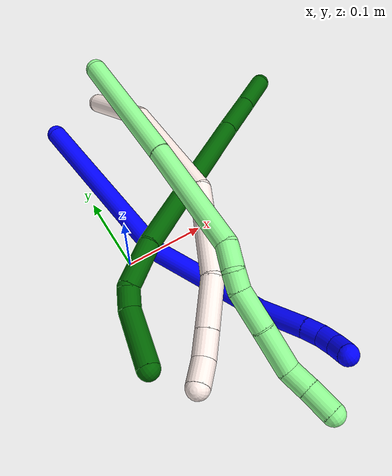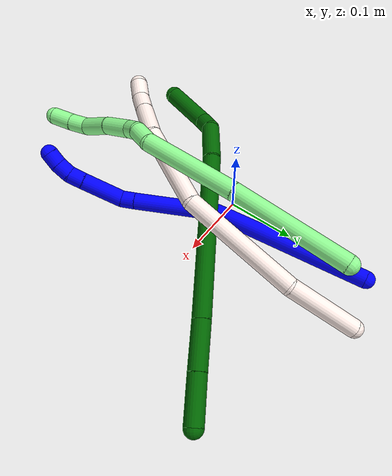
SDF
<sdf version="1.7">
 <world name="default">
  <model name="1">
   <static>0</static>
   <link name="1">
    <collision name="collision-cylinder-e_1_1_4">
     <pose>0.021706 -0.098961 -0.053769 2.06851 0.190398 0.318391</pose>
     <geometry><cylinder><radius>0.0125</radius><length>0.229395</length></cylinder></geometry>
     <surface>
      <friction><ode><mu>1.16</mu><mu2>1.16</mu2><slip1>0</slip1><slip2>0</slip2></ode></friction>
      <contact><ode><kp>1e+06</kp><kd>1</kd><max_vel>0</max_vel><min_depth>0.001</min_depth></ode></contact>
     </surface>
    </collision>
    <visual name="visual-cylinder-e_1_1_4">
     <pose>0.021706 -0.098961 -0.053769 2.06851 0.190398 0.318391</pose>
     <geometry><cylinder><radius>0.0125</radius><length>0.229395</length></cylinder></geometry>
     <material><ambient>0 0 1 1</ambient></material>
    </visual>
    <collision name="collision-cylinder-e_2_4_5">
     <pose>0.073482 -0.240779 -0.140738 2.2299 0.506398 0.971214</pose>
     <geometry><cylinder><radius>0.0125</radius><length>0.123987</length></cylinder></geometry>
     <surface>
      <friction><ode><mu>1.16</mu><mu2>1.16</mu2><slip1>0</slip1><slip2>0</slip2></ode></friction>
      <contact><ode><kp>1e+06</kp><kd>1</kd><max_vel>0</max_vel><min_depth>0.001</min_depth></ode></contact>
     </surface>
    </collision>
    <visual name="visual-cylinder-e_2_4_5">
     <pose>0.073482 -0.240779 -0.140738 2.2299 0.506398 0.971214</pose>
     <geometry><cylinder><radius>0.0125</radius><length>0.123987</length></cylinder></geometry>
     <material><ambient>0 0 1 1</ambient></material>
    </visual>
    <collision name="collision-cylinder-e_3_5_6">
     <pose>0.108422 -0.291187 -0.179608 2.2148 0.476355 0.904568</pose>
     <geometry><cylinder><radius>0.0125</radius><length>0.02125</length></cylinder></geometry>
     <surface>
      <friction><ode><mu>1.16</mu><mu2>1.16</mu2><slip1>0</slip1><slip2>0</slip2></ode></friction>
      <contact><ode><kp>1e+06</kp><kd>1</kd><max_vel>0</max_vel><min_depth>0.001</min_depth></ode></contact>
     </surface>
    </collision>
    <visual name="visual-cylinder-e_3_5_6">
     <pose>0.108422 -0.291187 -0.179608 2.2148 0.476355 0.904568</pose>
     <geometry><cylinder><radius>0.0125</radius><length>0.02125</length></cylinder></geometry>
     <material><ambient>0 0 1 1</ambient></material>
    </visual>
    <collision name="collision-cylinder-e_4_6_7">
     <pose>0.131055 -0.324 -0.189454 1.73467 0.606442 0.706743</pose>
     <geometry><cylinder><radius>0.0125</radius><length>0.062323</length></cylinder></geometry>
     <surface>
      <friction><ode><mu>1.16</mu><mu2>1.16</mu2><slip1>0</slip1><slip2>0</slip2></ode></friction>
      <contact><ode><kp>1e+06</kp><kd>1</kd><max_vel>0</max_vel><min_depth>0.001</min_depth></ode></contact>
     </surface>
    </collision>
    <visual name="visual-cylinder-e_4_6_7">
     <pose>0.131055 -0.324 -0.189454 1.73467 0.606442 0.706743</pose>
     <geometry><cylinder><radius>0.0125</radius><length>0.062323</length></cylinder></geometry>
     <material><ambient>0 0 1 1</ambient></material>
    </visual>
    <collision name="collision-cylinder-e_5_7_8">
     <pose>0.154404 -0.358281 -0.195299 1.75358 0.547292 0.650682</pose>
     <geometry><cylinder><radius>0.0125</radius><length>0.02148</length></cylinder></geometry>
     <surface>
      <friction><ode><mu>1.16</mu><mu2>1.16</mu2><slip1>0</slip1><slip2>0</slip2></ode></friction>
      <contact><ode><kp>1e+06</kp><kd>1</kd><max_vel>0</max_vel><min_depth>0.001</min_depth></ode></contact>
     </surface>
    </collision>
    <visual name="visual-cylinder-e_5_7_8">
     <pose>0.154404 -0.358281 -0.195299 1.75358 0.547292 0.650682</pose>
     <geometry><cylinder><radius>0.0125</radius><length>0.02148</length></cylinder></geometry>
     <material><ambient>0 0 1 1</ambient></material>
    </visual>
    <collision name="collision-cylinder-e_6_8_9">
     <pose>0.163837 -0.377123 -0.196487 1.52211 0.372592 0.355258</pose>
     <geometry><cylinder><radius>0.0125</radius><length>0.02112</length></cylinder></geometry>
     <surface>
      <friction><ode><mu>1.16</mu><mu2>1.16</mu2><slip1>0</slip1><slip2>0</slip2></ode></friction>
      <contact><ode><kp>1e+06</kp><kd>1</kd><max_vel>0</max_vel><min_depth>0.001</min_depth></ode></contact>
     </surface>
    </collision>
    <visual name="visual-cylinder-e_6_8_9">
     <pose>0.163837 -0.377123 -0.196487 1.52211 0.372592 0.355258</pose>
     <geometry><cylinder><radius>0.0125</radius><length>0.02112</length></cylinder></geometry>
     <material><ambient>0 0 1 1</ambient></material>
    </visual>
    <collision name="collision-cylinder-e_7_9_2">
     <pose>0.170445 -0.396523 -0.193737 1.3379 0.273707 0.216884</pose>
     <geometry><cylinder><radius>0.0125</radius><length>0.020445</length></cylinder></geometry>
     <surface>
      <friction><ode><mu>1.16</mu><mu2>1.16</mu2><slip1>0</slip1><slip2>0</slip2></ode></friction>
      <contact><ode><kp>1e+06</kp><kd>1</kd><max_vel>0</max_vel><min_depth>0.001</min_depth></ode></contact>
     </surface>
    </collision>
    <visual name="visual-cylinder-e_7_9_2">
     <pose>0.170445 -0.396523 -0.193737 1.3379 0.273707 0.216884</pose>
     <geometry><cylinder><radius>0.0125</radius><length>0.020445</length></cylinder></geometry>
     <material><ambient>0 0 1 1</ambient></material>
    </visual>
    <collision name="collision-sphere-2">
     <pose>0.173208 -0.406099 -0.191466 0 -0 0</pose>
     <geometry><sphere><radius>0.0125</radius></sphere></geometry>
     <surface>
      <friction><ode><mu>1.16</mu><mu2>1.16</mu2><slip1>0</slip1><slip2>0</slip2></ode></friction>
      <contact><ode><kp>1e+06</kp><kd>1</kd><max_vel>0</max_vel><min_depth>0.001</min_depth></ode></contact>
     </surface>
    </collision>
    <visual name="visual-sphere-2">
     <pose>0.173208 -0.406099 -0.191466 0 -0 0</pose>
     <geometry><sphere><radius>0.0125</radius></sphere></geometry>
     <material><ambient>0 0 1 1</ambient></material>
    </visual>
    <collision name="collision-sphere-9">
     <pose>0.167682 -0.386947 -0.196009 0 -0 0</pose>
     <geometry><sphere><radius>0.0125</radius></sphere></geometry>
     <surface>
      <friction><ode><mu>1.16</mu><mu2>1.16</mu2><slip1>0</slip1><slip2>0</slip2></ode></friction>
      <contact><ode><kp>1e+06</kp><kd>1</kd><max_vel>0</max_vel><min_depth>0.001</min_depth></ode></contact>
     </surface>
    </collision>
    <visual name="visual-sphere-9">
     <pose>0.167682 -0.386947 -0.196009 0 -0 0</pose>
     <geometry><sphere><radius>0.0125</radius></sphere></geometry>
     <material><ambient>0 0 1 1</ambient></material>
    </visual>
    <collision name="collision-sphere-4">
     <pose>0.043413 -0.197921 -0.107538 0 -0 0</pose>
     <geometry><sphere><radius>0.0125</radius></sphere></geometry>
     <surface>
      <friction><ode><mu>1.16</mu><mu2>1.16</mu2><slip1>0</slip1><slip2>0</slip2></ode></friction>
      <contact><ode><kp>1e+06</kp><kd>1</kd><max_vel>0</max_vel><min_depth>0.001</min_depth></ode></contact>
     </surface>
    </collision>
    <visual name="visual-sphere-4">
     <pose>0.043413 -0.197921 -0.107538 0 -0 0</pose>
     <geometry><sphere><radius>0.0125</radius></sphere></geometry>
     <material><ambient>0 0 1 1</ambient></material>
    </visual>
    <collision name="collision-sphere-1">
     <geometry><sphere><radius>0.0125</radius></sphere></geometry>
     <surface>
      <friction><ode><mu>1.16</mu><mu2>1.16</mu2><slip1>0</slip1><slip2>0</slip2></ode></friction>
      <contact><ode><kp>1e+06</kp><kd>1</kd><max_vel>0</max_vel><min_depth>0.001</min_depth></ode></contact>
     </surface>
    </collision>
    <visual name="visual-sphere-1">
     <geometry><sphere><radius>0.0125</radius></sphere></geometry>
     <material><ambient>0 0 1 1</ambient></material>
    </visual>
    <collision name="collision-sphere-8">
     <pose>0.159993 -0.367299 -0.196966 0 -0 0</pose>
     <geometry><sphere><radius>0.0125</radius></sphere></geometry>
     <surface>
      <friction><ode><mu>1.16</mu><mu2>1.16</mu2><slip1>0</slip1><slip2>0</slip2></ode></friction>
      <contact><ode><kp>1e+06</kp><kd>1</kd><max_vel>0</max_vel><min_depth>0.001</min_depth></ode></contact>
     </surface>
    </collision>
    <visual name="visual-sphere-8">
     <pose>0.159993 -0.367299 -0.196966 0 -0 0</pose>
     <geometry><sphere><radius>0.0125</radius></sphere></geometry>
     <material><ambient>0 0 1 1</ambient></material>
    </visual>
    <collision name="collision-sphere-5">
     <pose>0.10355 -0.283636 -0.173939 0 -0 0</pose>
     <geometry><sphere><radius>0.0125</radius></sphere></geometry>
     <surface>
      <friction><ode><mu>1.16</mu><mu2>1.16</mu2><slip1>0</slip1><slip2>0</slip2></ode></friction>
      <contact><ode><kp>1e+06</kp><kd>1</kd><max_vel>0</max_vel><min_depth>0.001</min_depth></ode></contact>
     </surface>
    </collision>
    <visual name="visual-sphere-5">
     <pose>0.10355 -0.283636 -0.173939 0 -0 0</pose>
     <geometry><sphere><radius>0.0125</radius></sphere></geometry>
     <material><ambient>0 0 1 1</ambient></material>
    </visual>
    <collision name="collision-sphere-6">
     <pose>0.113294 -0.298738 -0.185277 0 -0 0</pose>
     <geometry><sphere><radius>0.0125</radius></sphere></geometry>
     <surface>
      <friction><ode><mu>1.16</mu><mu2>1.16</mu2><slip1>0</slip1><slip2>0</slip2></ode></friction>
      <contact><ode><kp>1e+06</kp><kd>1</kd><max_vel>0</max_vel><min_depth>0.001</min_depth></ode></contact>
     </surface>
    </collision>
    <visual name="visual-sphere-6">
     <pose>0.113294 -0.298738 -0.185277 0 -0 0</pose>
     <geometry><sphere><radius>0.0125</radius></sphere></geometry>
     <material><ambient>0 0 1 1</ambient></material>
    </visual>
    <collision name="collision-sphere-7">
     <pose>0.148815 -0.349262 -0.193632 0 -0 0</pose>
     <geometry><sphere><radius>0.0125</radius></sphere></geometry>
     <surface>
      <friction><ode><mu>1.16</mu><mu2>1.16</mu2><slip1>0</slip1><slip2>0</slip2></ode></friction>
      <contact><ode><kp>1e+06</kp><kd>1</kd><max_vel>0</max_vel><min_depth>0.001</min_depth></ode></contact>
     </surface>
    </collision>
    <visual name="visual-sphere-7">
     <pose>0.148815 -0.349262 -0.193632 0 -0 0</pose>
     <geometry><sphere><radius>0.0125</radius></sphere></geometry>
     <material><ambient>0 0 1 1</ambient></material>
    </visual>
    <inertial>
     <pose>0.069647 -0.205405 -0.115428 0 -0 0</pose>
     <mass>0.5</mass>
     <inertia><ixx>0.001505</ixx><ixy>0</ixy><ixz>0</ixz><iyy>7e-06</iyy><iyz>0</iyz><izz>0.000711</izz></inertia>
    </inertial>
   </link>
   <pose>0.006772 0.222565 0.010887 -0.415862 -0.412497 -0.088913</pose>
  </model>
  <model name="6">
   <static>0</static>
   <link name="6">
    <collision name="collision-cylinder-e_1_1_4">
     <pose>-0.023605 0.01923 -0.005114 -1.83071 -0.870386 1.08776</pose>
     <geometry><cylinder><radius>0.0125</radius><length>0.061746</length></cylinder></geometry>
     <surface>
      <friction><ode><mu>1.16</mu><mu2>1.16</mu2><slip1>0</slip1><slip2>0</slip2></ode></friction>
      <contact><ode><kp>1e+06</kp><kd>1</kd><max_vel>0</max_vel><min_depth>0.001</min_depth></ode></contact>
     </surface>
    </collision>
    <visual name="visual-cylinder-e_1_1_4">
     <pose>-0.023605 0.01923 -0.005114 -1.83071 -0.870386 1.08776</pose>
     <geometry><cylinder><radius>0.0125</radius><length>0.061746</length></cylinder></geometry>
     <material><ambient>0 0.392157 0.003922 1</ambient></material>
    </visual>
    <collision name="collision-cylinder-e_2_4_5">
     <pose>-0.070919 0.058342 -0.015295 -1.82035 -0.857471 1.0634</pose>
     <geometry><cylinder><radius>0.0125</radius><length>0.062707</length></cylinder></geometry>
     <surface>
      <friction><ode><mu>1.16</mu><mu2>1.16</mu2><slip1>0</slip1><slip2>0</slip2></ode></friction>
      <contact><ode><kp>1e+06</kp><kd>1</kd><max_vel>0</max_vel><min_depth>0.001</min_depth></ode></contact>
     </surface>
    </collision>
    <visual name="visual-cylinder-e_2_4_5">
     <pose>-0.070919 0.058342 -0.015295 -1.82035 -0.857471 1.0634</pose>
     <geometry><cylinder><radius>0.0125</radius><length>0.062707</length></cylinder></geometry>
     <material><ambient>0 0.392157 0.003922 1</ambient></material>
    </visual>
    <collision name="collision-cylinder-e_3_5_6">
     <pose>-0.18147 0.149282 -0.040008 -1.84053 -0.866905 1.09274</pose>
     <geometry><cylinder><radius>0.0125</radius><length>0.227832</length></cylinder></geometry>
     <surface>
      <friction><ode><mu>1.16</mu><mu2>1.16</mu2><slip1>0</slip1><slip2>0</slip2></ode></friction>
      <contact><ode><kp>1e+06</kp><kd>1</kd><max_vel>0</max_vel><min_depth>0.001</min_depth></ode></contact>
     </surface>
    </collision>
    <visual name="visual-cylinder-e_3_5_6">
     <pose>-0.18147 0.149282 -0.040008 -1.84053 -0.866905 1.09274</pose>
     <geometry><cylinder><radius>0.0125</radius><length>0.227832</length></cylinder></geometry>
     <material><ambient>0 0.392157 0.003922 1</ambient></material>
    </visual>
    <collision name="collision-cylinder-e_4_6_7">
     <pose>-0.287102 0.239252 -0.069015 -2.03047 -0.727544 1.10026</pose>
     <geometry><cylinder><radius>0.0125</radius><length>0.05651</length></cylinder></geometry>
     <surface>
      <friction><ode><mu>1.16</mu><mu2>1.16</mu2><slip1>0</slip1><slip2>0</slip2></ode></friction>
      <contact><ode><kp>1e+06</kp><kd>1</kd><max_vel>0</max_vel><min_depth>0.001</min_depth></ode></contact>
     </surface>
    </collision>
    <visual name="visual-cylinder-e_4_6_7">
     <pose>-0.287102 0.239252 -0.069015 -2.03047 -0.727544 1.10026</pose>
     <geometry><cylinder><radius>0.0125</radius><length>0.05651</length></cylinder></geometry>
     <material><ambient>0 0.392157 0.003922 1</ambient></material>
    </visual>
    <collision name="collision-cylinder-e_5_7_8">
     <pose>-0.311379 0.263756 -0.087445 -2.58887 -0.475485 1.4141</pose>
     <geometry><cylinder><radius>0.0125</radius><length>0.023967</length></cylinder></geometry>
     <surface>
      <friction><ode><mu>1.16</mu><mu2>1.16</mu2><slip1>0</slip1><slip2>0</slip2></ode></friction>
      <contact><ode><kp>1e+06</kp><kd>1</kd><max_vel>0</max_vel><min_depth>0.001</min_depth></ode></contact>
     </surface>
    </collision>
    <visual name="visual-cylinder-e_5_7_8">
     <pose>-0.311379 0.263756 -0.087445 -2.58887 -0.475485 1.4141</pose>
     <geometry><cylinder><radius>0.0125</radius><length>0.023967</length></cylinder></geometry>
     <material><ambient>0 0.392157 0.003922 1</ambient></material>
    </visual>
    <collision name="collision-cylinder-e_6_8_2">
     <pose>-0.338928 0.273933 -0.121461 -2.95991 -0.715892 2.66386</pose>
     <geometry><cylinder><radius>0.0125</radius><length>0.067237</length></cylinder></geometry>
     <surface>
      <friction><ode><mu>1.16</mu><mu2>1.16</mu2><slip1>0</slip1><slip2>0</slip2></ode></friction>
      <contact><ode><kp>1e+06</kp><kd>1</kd><max_vel>0</max_vel><min_depth>0.001</min_depth></ode></contact>
     </surface>
    </collision>
    <visual name="visual-cylinder-e_6_8_2">
     <pose>-0.338928 0.273933 -0.121461 -2.95991 -0.715892 2.66386</pose>
     <geometry><cylinder><radius>0.0125</radius><length>0.067237</length></cylinder></geometry>
     <material><ambient>0 0.392157 0.003922 1</ambient></material>
    </visual>
    <collision name="collision-sphere-2">
     <pose>-0.360991 0.278516 -0.146408 0 -0 0</pose>
     <geometry><sphere><radius>0.0125</radius></sphere></geometry>
     <surface>
      <friction><ode><mu>1.16</mu><mu2>1.16</mu2><slip1>0</slip1><slip2>0</slip2></ode></friction>
      <contact><ode><kp>1e+06</kp><kd>1</kd><max_vel>0</max_vel><min_depth>0.001</min_depth></ode></contact>
     </surface>
    </collision>
    <visual name="visual-sphere-2">
     <pose>-0.360991 0.278516 -0.146408 0 -0 0</pose>
     <geometry><sphere><radius>0.0125</radius></sphere></geometry>
     <material><ambient>0 0.392157 0.003922 1</ambient></material>
    </visual>
    <collision name="collision-sphere-4">
     <pose>-0.04721 0.038461 -0.010228 0 -0 0</pose>
     <geometry><sphere><radius>0.0125</radius></sphere></geometry>
     <surface>
      <friction><ode><mu>1.16</mu><mu2>1.16</mu2><slip1>0</slip1><slip2>0</slip2></ode></friction>
      <contact><ode><kp>1e+06</kp><kd>1</kd><max_vel>0</max_vel><min_depth>0.001</min_depth></ode></contact>
     </surface>
    </collision>
    <visual name="visual-sphere-4">
     <pose>-0.04721 0.038461 -0.010228 0 -0 0</pose>
     <geometry><sphere><radius>0.0125</radius></sphere></geometry>
     <material><ambient>0 0.392157 0.003922 1</ambient></material>
    </visual>
    <collision name="collision-sphere-1">
     <geometry><sphere><radius>0.0125</radius></sphere></geometry>
     <surface>
      <friction><ode><mu>1.16</mu><mu2>1.16</mu2><slip1>0</slip1><slip2>0</slip2></ode></friction>
      <contact><ode><kp>1e+06</kp><kd>1</kd><max_vel>0</max_vel><min_depth>0.001</min_depth></ode></contact>
     </surface>
    </collision>
    <visual name="visual-sphere-1">
     <geometry><sphere><radius>0.0125</radius></sphere></geometry>
     <material><ambient>0 0.392157 0.003922 1</ambient></material>
    </visual>
    <collision name="collision-sphere-8">
     <pose>-0.316865 0.26935 -0.096513 0 -0 0</pose>
     <geometry><sphere><radius>0.0125</radius></sphere></geometry>
     <surface>
      <friction><ode><mu>1.16</mu><mu2>1.16</mu2><slip1>0</slip1><slip2>0</slip2></ode></friction>
      <contact><ode><kp>1e+06</kp><kd>1</kd><max_vel>0</max_vel><min_depth>0.001</min_depth></ode></contact>
     </surface>
    </collision>
    <visual name="visual-sphere-8">
     <pose>-0.316865 0.26935 -0.096513 0 -0 0</pose>
     <geometry><sphere><radius>0.0125</radius></sphere></geometry>
     <material><ambient>0 0.392157 0.003922 1</ambient></material>
    </visual>
    <collision name="collision-sphere-5">
     <pose>-0.094629 0.078222 -0.020362 0 -0 0</pose>
     <geometry><sphere><radius>0.0125</radius></sphere></geometry>
     <surface>
      <friction><ode><mu>1.16</mu><mu2>1.16</mu2><slip1>0</slip1><slip2>0</slip2></ode></friction>
      <contact><ode><kp>1e+06</kp><kd>1</kd><max_vel>0</max_vel><min_depth>0.001</min_depth></ode></contact>
     </surface>
    </collision>
    <visual name="visual-sphere-5">
     <pose>-0.094629 0.078222 -0.020362 0 -0 0</pose>
     <geometry><sphere><radius>0.0125</radius></sphere></geometry>
     <material><ambient>0 0.392157 0.003922 1</ambient></material>
    </visual>
    <collision name="collision-sphere-6">
     <pose>-0.268312 0.220341 -0.059654 0 -0 0</pose>
     <geometry><sphere><radius>0.0125</radius></sphere></geometry>
     <surface>
      <friction><ode><mu>1.16</mu><mu2>1.16</mu2><slip1>0</slip1><slip2>0</slip2></ode></friction>
      <contact><ode><kp>1e+06</kp><kd>1</kd><max_vel>0</max_vel><min_depth>0.001</min_depth></ode></contact>
     </surface>
    </collision>
    <visual name="visual-sphere-6">
     <pose>-0.268312 0.220341 -0.059654 0 -0 0</pose>
     <geometry><sphere><radius>0.0125</radius></sphere></geometry>
     <material><ambient>0 0.392157 0.003922 1</ambient></material>
    </visual>
    <collision name="collision-sphere-7">
     <pose>-0.305893 0.258163 -0.078377 0 -0 0</pose>
     <geometry><sphere><radius>0.0125</radius></sphere></geometry>
     <surface>
      <friction><ode><mu>1.16</mu><mu2>1.16</mu2><slip1>0</slip1><slip2>0</slip2></ode></friction>
      <contact><ode><kp>1e+06</kp><kd>1</kd><max_vel>0</max_vel><min_depth>0.001</min_depth></ode></contact>
     </surface>
    </collision>
    <visual name="visual-sphere-7">
     <pose>-0.305893 0.258163 -0.078377 0 -0 0</pose>
     <geometry><sphere><radius>0.0125</radius></sphere></geometry>
     <material><ambient>0 0.392157 0.003922 1</ambient></material>
    </visual>
    <inertial>
     <pose>-0.18745 0.154234 -0.049105 0 -0 0</pose>
     <mass>0.5</mass>
     <inertia>
      <ixx>0.000889</ixx>
      <ixy>0</ixy>
      <ixz>0</ixz>
      <iyy>0.001224</iyy>
      <iyz>0</iyz>
      <izz>0.000147</izz>
     </inertia>
    </inertial>
   </link>
   <pose>0.301144 0.154373 0.011959 -0.742351 0.86712 0.937445</pose>
  </model>
  <model name="11">
   <static>0</static>
   <link name="11">
    <collision name="collision-cylinder-e_1_1_4">
     <pose>0.028968 -0.03554 0.021991 1.01668 0.606097 0.344978</pose>
     <geometry><cylinder><radius>0.0125</radius><length>0.101703</length></cylinder></geometry>
     <surface>
      <friction><ode><mu>1.16</mu><mu2>1.16</mu2><slip1>0</slip1><slip2>0</slip2></ode></friction>
      <contact><ode><kp>1e+06</kp><kd>1</kd><max_vel>0</max_vel><min_depth>0.001</min_depth></ode></contact>
     </surface>
    </collision>
    <visual name="visual-cylinder-e_1_1_4">
     <pose>0.028968 -0.03554 0.021991 1.01668 0.606097 0.344978</pose>
     <geometry><cylinder><radius>0.0125</radius><length>0.101703</length></cylinder></geometry>
     <material><ambient>1 0.933333 0.909804 1</ambient></material>
    </visual>
    <collision name="collision-cylinder-e_2_4_5">
     <pose>0.078967 -0.142452 0.078924 1.11554 0.258717 0.161951</pose>
     <geometry><cylinder><radius>0.0125</radius><length>0.164404</length></cylinder></geometry>
     <surface>
      <friction><ode><mu>1.16</mu><mu2>1.16</mu2><slip1>0</slip1><slip2>0</slip2></ode></friction>
      <contact><ode><kp>1e+06</kp><kd>1</kd><max_vel>0</max_vel><min_depth>0.001</min_depth></ode></contact>
     </surface>
    </collision>
    <visual name="visual-cylinder-e_2_4_5">
     <pose>0.078967 -0.142452 0.078924 1.11554 0.258717 0.161951</pose>
     <geometry><cylinder><radius>0.0125</radius><length>0.164404</length></cylinder></geometry>
     <material><ambient>1 0.933333 0.909804 1</ambient></material>
    </visual>
    <collision name="collision-cylinder-e_3_5_6">
     <pose>0.090968 -0.26478 0.144545 1.02882 -0.150668 -0.085262</pose>
     <geometry><cylinder><radius>0.0125</radius><length>0.120321</length></cylinder></geometry>
     <surface>
      <friction><ode><mu>1.16</mu><mu2>1.16</mu2><slip1>0</slip1><slip2>0</slip2></ode></friction>
      <contact><ode><kp>1e+06</kp><kd>1</kd><max_vel>0</max_vel><min_depth>0.001</min_depth></ode></contact>
     </surface>
    </collision>
    <visual name="visual-cylinder-e_3_5_6">
     <pose>0.090968 -0.26478 0.144545 1.02882 -0.150668 -0.085262</pose>
     <geometry><cylinder><radius>0.0125</radius><length>0.120321</length></cylinder></geometry>
     <material><ambient>1 0.933333 0.909804 1</ambient></material>
    </visual>
    <collision name="collision-cylinder-e_4_6_7">
     <pose>0.070081 -0.338396 0.186354 1.11433 -0.43908 -0.276261</pose>
     <geometry><cylinder><radius>0.0125</radius><length>0.055784</length></cylinder></geometry>
     <surface>
      <friction><ode><mu>1.16</mu><mu2>1.16</mu2><slip1>0</slip1><slip2>0</slip2></ode></friction>
      <contact><ode><kp>1e+06</kp><kd>1</kd><max_vel>0</max_vel><min_depth>0.001</min_depth></ode></contact>
     </surface>
    </collision>
    <visual name="visual-cylinder-e_4_6_7">
     <pose>0.070081 -0.338396 0.186354 1.11433 -0.43908 -0.276261</pose>
     <geometry><cylinder><radius>0.0125</radius><length>0.055784</length></cylinder></geometry>
     <material><ambient>1 0.933333 0.909804 1</ambient></material>
    </visual>
    <collision name="collision-cylinder-e_5_7_8">
     <pose>0.051884 -0.372941 0.203513 1.10117 -0.443995 -0.275386</pose>
     <geometry><cylinder><radius>0.0125</radius><length>0.029515</length></cylinder></geometry>
     <surface>
      <friction><ode><mu>1.16</mu><mu2>1.16</mu2><slip1>0</slip1><slip2>0</slip2></ode></friction>
      <contact><ode><kp>1e+06</kp><kd>1</kd><max_vel>0</max_vel><min_depth>0.001</min_depth></ode></contact>
     </surface>
    </collision>
    <visual name="visual-cylinder-e_5_7_8">
     <pose>0.051884 -0.372941 0.203513 1.10117 -0.443995 -0.275386</pose>
     <geometry><cylinder><radius>0.0125</radius><length>0.029515</length></cylinder></geometry>
     <material><ambient>1 0.933333 0.909804 1</ambient></material>
    </visual>
    <collision name="collision-cylinder-e_6_8_2">
     <pose>0.040223 -0.394451 0.218425 0.825635 -0.386026 -0.170789</pose>
     <geometry><cylinder><radius>0.0125</radius><length>0.028273</length></cylinder></geometry>
     <surface>
      <friction><ode><mu>1.16</mu><mu2>1.16</mu2><slip1>0</slip1><slip2>0</slip2></ode></friction>
      <contact><ode><kp>1e+06</kp><kd>1</kd><max_vel>0</max_vel><min_depth>0.001</min_depth></ode></contact>
     </surface>
    </collision>
    <visual name="visual-cylinder-e_6_8_2">
     <pose>0.040223 -0.394451 0.218425 0.825635 -0.386026 -0.170789</pose>
     <geometry><cylinder><radius>0.0125</radius><length>0.028273</length></cylinder></geometry>
     <material><ambient>1 0.933333 0.909804 1</ambient></material>
    </visual>
    <collision name="collision-sphere-2">
     <pose>0.0349 -0.404076 0.227306 0 -0 0</pose>
     <geometry><sphere><radius>0.0125</radius></sphere></geometry>
     <surface>
      <friction><ode><mu>1.16</mu><mu2>1.16</mu2><slip1>0</slip1><slip2>0</slip2></ode></friction>
      <contact><ode><kp>1e+06</kp><kd>1</kd><max_vel>0</max_vel><min_depth>0.001</min_depth></ode></contact>
     </surface>
    </collision>
    <visual name="visual-sphere-2">
     <pose>0.0349 -0.404076 0.227306 0 -0 0</pose>
     <geometry><sphere><radius>0.0125</radius></sphere></geometry>
     <material><ambient>1 0.933333 0.909804 1</ambient></material>
    </visual>
    <collision name="collision-sphere-4">
     <pose>0.057936 -0.07108 0.043983 0 -0 0</pose>
     <geometry><sphere><radius>0.0125</radius></sphere></geometry>
     <surface>
      <friction><ode><mu>1.16</mu><mu2>1.16</mu2><slip1>0</slip1><slip2>0</slip2></ode></friction>
      <contact><ode><kp>1e+06</kp><kd>1</kd><max_vel>0</max_vel><min_depth>0.001</min_depth></ode></contact>
     </surface>
    </collision>
    <visual name="visual-sphere-4">
     <pose>0.057936 -0.07108 0.043983 0 -0 0</pose>
     <geometry><sphere><radius>0.0125</radius></sphere></geometry>
     <material><ambient>1 0.933333 0.909804 1</ambient></material>
    </visual>
    <collision name="collision-sphere-1">
     <geometry><sphere><radius>0.0125</radius></sphere></geometry>
     <surface>
      <friction><ode><mu>1.16</mu><mu2>1.16</mu2><slip1>0</slip1><slip2>0</slip2></ode></friction>
      <contact><ode><kp>1e+06</kp><kd>1</kd><max_vel>0</max_vel><min_depth>0.001</min_depth></ode></contact>
     </surface>
    </collision>
    <visual name="visual-sphere-1">
     <geometry><sphere><radius>0.0125</radius></sphere></geometry>
     <material><ambient>1 0.933333 0.909804 1</ambient></material>
    </visual>
    <collision name="collision-sphere-8">
     <pose>0.045545 -0.384825 0.209544 0 -0 0</pose>
     <geometry><sphere><radius>0.0125</radius></sphere></geometry>
     <surface>
      <friction><ode><mu>1.16</mu><mu2>1.16</mu2><slip1>0</slip1><slip2>0</slip2></ode></friction>
      <contact><ode><kp>1e+06</kp><kd>1</kd><max_vel>0</max_vel><min_depth>0.001</min_depth></ode></contact>
     </surface>
    </collision>
    <visual name="visual-sphere-8">
     <pose>0.045545 -0.384825 0.209544 0 -0 0</pose>
     <geometry><sphere><radius>0.0125</radius></sphere></geometry>
     <material><ambient>1 0.933333 0.909804 1</ambient></material>
    </visual>
    <collision name="collision-sphere-5">
     <pose>0.099998 -0.213825 0.113864 0 -0 0</pose>
     <geometry><sphere><radius>0.0125</radius></sphere></geometry>
     <surface>
      <friction><ode><mu>1.16</mu><mu2>1.16</mu2><slip1>0</slip1><slip2>0</slip2></ode></friction>
      <contact><ode><kp>1e+06</kp><kd>1</kd><max_vel>0</max_vel><min_depth>0.001</min_depth></ode></contact>
     </surface>
    </collision>
    <visual name="visual-sphere-5">
     <pose>0.099998 -0.213825 0.113864 0 -0 0</pose>
     <geometry><sphere><radius>0.0125</radius></sphere></geometry>
     <material><ambient>1 0.933333 0.909804 1</ambient></material>
    </visual>
    <collision name="collision-sphere-6">
     <pose>0.081938 -0.315735 0.175226 0 -0 0</pose>
     <geometry><sphere><radius>0.0125</radius></sphere></geometry>
     <surface>
      <friction><ode><mu>1.16</mu><mu2>1.16</mu2><slip1>0</slip1><slip2>0</slip2></ode></friction>
      <contact><ode><kp>1e+06</kp><kd>1</kd><max_vel>0</max_vel><min_depth>0.001</min_depth></ode></contact>
     </surface>
    </collision>
    <visual name="visual-sphere-6">
     <pose>0.081938 -0.315735 0.175226 0 -0 0</pose>
     <geometry><sphere><radius>0.0125</radius></sphere></geometry>
     <material><ambient>1 0.933333 0.909804 1</ambient></material>
    </visual>
    <collision name="collision-sphere-7">
     <pose>0.058224 -0.361057 0.197482 0 -0 0</pose>
     <geometry><sphere><radius>0.0125</radius></sphere></geometry>
     <surface>
      <friction><ode><mu>1.16</mu><mu2>1.16</mu2><slip1>0</slip1><slip2>0</slip2></ode></friction>
      <contact><ode><kp>1e+06</kp><kd>1</kd><max_vel>0</max_vel><min_depth>0.001</min_depth></ode></contact>
     </surface>
    </collision>
    <visual name="visual-sphere-7">
     <pose>0.058224 -0.361057 0.197482 0 -0 0</pose>
     <geometry><sphere><radius>0.0125</radius></sphere></geometry>
     <material><ambient>1 0.933333 0.909804 1</ambient></material>
    </visual>
    <inertial>
     <pose>0.066904 -0.199859 0.110363 0 -0 0</pose>
     <mass>0.5</mass>
     <inertia>
      <ixx>0.000667</ixx>
      <ixy>0</ixy>
      <ixz>0</ixz>
      <iyy>0.000364</iyy>
      <iyz>0</iyz>
      <izz>0.000438</izz>
     </inertia>
    </inertial>
   </link>
   <pose>0.081668 0.242839 0.012153 0.301983 -0.506521 -0.207236</pose>
  </model>
  <model name="13">
   <static>0</static>
   <link name="13">
    <collision name="collision-cylinder-e_1_1_4">
     <pose>0.003585 -0.079966 0.01201 1.42172 0.044308 0.038152</pose>
     <geometry><cylinder><radius>0.0125</radius><length>0.161885</length></cylinder></geometry>
     <surface>
      <friction><ode><mu>1.16</mu><mu2>1.16</mu2><slip1>0</slip1><slip2>0</slip2></ode></friction>
      <contact><ode><kp>1e+06</kp><kd>1</kd><max_vel>0</max_vel><min_depth>0.001</min_depth></ode></contact>
     </surface>
    </collision>
    <visual name="visual-cylinder-e_1_1_4">
     <pose>0.003585 -0.079966 0.01201 1.42172 0.044308 0.038152</pose>
     <geometry><cylinder><radius>0.0125</radius><length>0.161885</length></cylinder></geometry>
     <material><ambient>0.564706 0.984314 0.572549 1</ambient></material>
    </visual>
    <collision name="collision-cylinder-e_2_4_5">
     <pose>0.005794 -0.227666 0.034713 1.41422 -0.020064 -0.017145</pose>
     <geometry><cylinder><radius>0.0125</radius><length>0.137173</length></cylinder></geometry>
     <surface>
      <friction><ode><mu>1.16</mu><mu2>1.16</mu2><slip1>0</slip1><slip2>0</slip2></ode></friction>
      <contact><ode><kp>1e+06</kp><kd>1</kd><max_vel>0</max_vel><min_depth>0.001</min_depth></ode></contact>
     </surface>
    </collision>
    <visual name="visual-cylinder-e_2_4_5">
     <pose>0.005794 -0.227666 0.034713 1.41422 -0.020064 -0.017145</pose>
     <geometry><cylinder><radius>0.0125</radius><length>0.137173</length></cylinder></geometry>
     <material><ambient>0.564706 0.984314 0.572549 1</ambient></material>
    </visual>
    <collision name="collision-cylinder-e_3_5_6">
     <pose>0.002947 -0.308081 0.052447 1.06397 -0.101089 -0.059533</pose>
     <geometry><cylinder><radius>0.0125</radius><length>0.029159</length></cylinder></geometry>
     <surface>
      <friction><ode><mu>1.16</mu><mu2>1.16</mu2><slip1>0</slip1><slip2>0</slip2></ode></friction>
      <contact><ode><kp>1e+06</kp><kd>1</kd><max_vel>0</max_vel><min_depth>0.001</min_depth></ode></contact>
     </surface>
    </collision>
    <visual name="visual-cylinder-e_3_5_6">
     <pose>0.002947 -0.308081 0.052447 1.06397 -0.101089 -0.059533</pose>
     <geometry><cylinder><radius>0.0125</radius><length>0.029159</length></cylinder></geometry>
     <material><ambient>0.564706 0.984314 0.572549 1</ambient></material>
    </visual>
    <collision name="collision-cylinder-e_4_6_7">
     <pose>-0.00357 -0.329114 0.063377 1.135 -0.501041 -0.323394</pose>
     <geometry><cylinder><radius>0.0125</radius><length>0.021007</length></cylinder></geometry>
     <surface>
      <friction><ode><mu>1.16</mu><mu2>1.16</mu2><slip1>0</slip1><slip2>0</slip2></ode></friction>
      <contact><ode><kp>1e+06</kp><kd>1</kd><max_vel>0</max_vel><min_depth>0.001</min_depth></ode></contact>
     </surface>
    </collision>
    <visual name="visual-cylinder-e_4_6_7">
     <pose>-0.00357 -0.329114 0.063377 1.135 -0.501041 -0.323394</pose>
     <geometry><cylinder><radius>0.0125</radius><length>0.021007</length></cylinder></geometry>
     <material><ambient>0.564706 0.984314 0.572549 1</ambient></material>
    </visual>
    <collision name="collision-cylinder-e_5_7_8">
     <pose>-0.017021 -0.357725 0.070222 1.42589 -0.389599 -0.337945</pose>
     <geometry><cylinder><radius>0.0125</radius><length>0.044264</length></cylinder></geometry>
     <surface>
      <friction><ode><mu>1.16</mu><mu2>1.16</mu2><slip1>0</slip1><slip2>0</slip2></ode></friction>
      <contact><ode><kp>1e+06</kp><kd>1</kd><max_vel>0</max_vel><min_depth>0.001</min_depth></ode></contact>
     </surface>
    </collision>
    <visual name="visual-cylinder-e_5_7_8">
     <pose>-0.017021 -0.357725 0.070222 1.42589 -0.389599 -0.337945</pose>
     <geometry><cylinder><radius>0.0125</radius><length>0.044264</length></cylinder></geometry>
     <material><ambient>0.564706 0.984314 0.572549 1</ambient></material>
    </visual>
    <collision name="collision-cylinder-e_6_8_9">
     <pose>-0.037609 -0.398849 0.075933 1.43952 -0.524685 -0.462394</pose>
     <geometry><cylinder><radius>0.0125</radius><length>0.048637</length></cylinder></geometry>
     <surface>
      <friction><ode><mu>1.16</mu><mu2>1.16</mu2><slip1>0</slip1><slip2>0</slip2></ode></friction>
      <contact><ode><kp>1e+06</kp><kd>1</kd><max_vel>0</max_vel><min_depth>0.001</min_depth></ode></contact>
     </surface>
    </collision>
    <visual name="visual-cylinder-e_6_8_9">
     <pose>-0.037609 -0.398849 0.075933 1.43952 -0.524685 -0.462394</pose>
     <geometry><cylinder><radius>0.0125</radius><length>0.048637</length></cylinder></geometry>
     <material><ambient>0.564706 0.984314 0.572549 1</ambient></material>
    </visual>
    <collision name="collision-cylinder-e_7_9_10">
     <pose>-0.051188 -0.432714 0.077618 1.65296 -0.10671 -0.115839</pose>
     <geometry><cylinder><radius>0.0125</radius><length>0.026236</length></cylinder></geometry>
     <surface>
      <friction><ode><mu>1.16</mu><mu2>1.16</mu2><slip1>0</slip1><slip2>0</slip2></ode></friction>
      <contact><ode><kp>1e+06</kp><kd>1</kd><max_vel>0</max_vel><min_depth>0.001</min_depth></ode></contact>
     </surface>
    </collision>
    <visual name="visual-cylinder-e_7_9_10">
     <pose>-0.051188 -0.432714 0.077618 1.65296 -0.10671 -0.115839</pose>
     <geometry><cylinder><radius>0.0125</radius><length>0.026236</length></cylinder></geometry>
     <material><ambient>0.564706 0.984314 0.572549 1</ambient></material>
    </visual>
    <collision name="collision-cylinder-e_8_10_2">
     <pose>-0.053488 -0.461501 0.076065 1.60137 -0.057074 -0.058846</pose>
     <geometry><cylinder><radius>0.0125</radius><length>0.03164</length></cylinder></geometry>
     <surface>
      <friction><ode><mu>1.16</mu><mu2>1.16</mu2><slip1>0</slip1><slip2>0</slip2></ode></friction>
      <contact><ode><kp>1e+06</kp><kd>1</kd><max_vel>0</max_vel><min_depth>0.001</min_depth></ode></contact>
     </surface>
    </collision>
    <visual name="visual-cylinder-e_8_10_2">
     <pose>-0.053488 -0.461501 0.076065 1.60137 -0.057074 -0.058846</pose>
     <geometry><cylinder><radius>0.0125</radius><length>0.03164</length></cylinder></geometry>
     <material><ambient>0.564706 0.984314 0.572549 1</ambient></material>
    </visual>
    <collision name="collision-sphere-2">
     <pose>-0.05439 -0.477288 0.075582 0 -0 0</pose>
     <geometry><sphere><radius>0.0125</radius></sphere></geometry>
     <surface>
      <friction><ode><mu>1.16</mu><mu2>1.16</mu2><slip1>0</slip1><slip2>0</slip2></ode></friction>
      <contact><ode><kp>1e+06</kp><kd>1</kd><max_vel>0</max_vel><min_depth>0.001</min_depth></ode></contact>
     </surface>
    </collision>
    <visual name="visual-sphere-2">
     <pose>-0.05439 -0.477288 0.075582 0 -0 0</pose>
     <geometry><sphere><radius>0.0125</radius></sphere></geometry>
     <material><ambient>0.564706 0.984314 0.572549 1</ambient></material>
    </visual>
    <collision name="collision-sphere-10">
     <pose>-0.052585 -0.445714 0.076547 0 -0 0</pose>
     <geometry><sphere><radius>0.0125</radius></sphere></geometry>
     <surface>
      <friction><ode><mu>1.16</mu><mu2>1.16</mu2><slip1>0</slip1><slip2>0</slip2></ode></friction>
      <contact><ode><kp>1e+06</kp><kd>1</kd><max_vel>0</max_vel><min_depth>0.001</min_depth></ode></contact>
     </surface>
    </collision>
    <visual name="visual-sphere-10">
     <pose>-0.052585 -0.445714 0.076547 0 -0 0</pose>
     <geometry><sphere><radius>0.0125</radius></sphere></geometry>
     <material><ambient>0.564706 0.984314 0.572549 1</ambient></material>
    </visual>
    <collision name="collision-sphere-9">
     <pose>-0.049791 -0.419715 0.078688 0 -0 0</pose>
     <geometry><sphere><radius>0.0125</radius></sphere></geometry>
     <surface>
      <friction><ode><mu>1.16</mu><mu2>1.16</mu2><slip1>0</slip1><slip2>0</slip2></ode></friction>
      <contact><ode><kp>1e+06</kp><kd>1</kd><max_vel>0</max_vel><min_depth>0.001</min_depth></ode></contact>
     </surface>
    </collision>
    <visual name="visual-sphere-9">
     <pose>-0.049791 -0.419715 0.078688 0 -0 0</pose>
     <geometry><sphere><radius>0.0125</radius></sphere></geometry>
     <material><ambient>0.564706 0.984314 0.572549 1</ambient></material>
    </visual>
    <collision name="collision-sphere-4">
     <pose>0.00717 -0.159932 0.02402 0 -0 0</pose>
     <geometry><sphere><radius>0.0125</radius></sphere></geometry>
     <surface>
      <friction><ode><mu>1.16</mu><mu2>1.16</mu2><slip1>0</slip1><slip2>0</slip2></ode></friction>
      <contact><ode><kp>1e+06</kp><kd>1</kd><max_vel>0</max_vel><min_depth>0.001</min_depth></ode></contact>
     </surface>
    </collision>
    <visual name="visual-sphere-4">
     <pose>0.00717 -0.159932 0.02402 0 -0 0</pose>
     <geometry><sphere><radius>0.0125</radius></sphere></geometry>
     <material><ambient>0.564706 0.984314 0.572549 1</ambient></material>
    </visual>
    <collision name="collision-sphere-1">
     <geometry><sphere><radius>0.0125</radius></sphere></geometry>
     <surface>
      <friction><ode><mu>1.16</mu><mu2>1.16</mu2><slip1>0</slip1><slip2>0</slip2></ode></friction>
      <contact><ode><kp>1e+06</kp><kd>1</kd><max_vel>0</max_vel><min_depth>0.001</min_depth></ode></contact>
     </surface>
    </collision>
    <visual name="visual-sphere-1">
     <geometry><sphere><radius>0.0125</radius></sphere></geometry>
     <material><ambient>0.564706 0.984314 0.572549 1</ambient></material>
    </visual>
    <collision name="collision-sphere-8">
     <pose>-0.025427 -0.377983 0.073178 0 -0 0</pose>
     <geometry><sphere><radius>0.0125</radius></sphere></geometry>
     <surface>
      <friction><ode><mu>1.16</mu><mu2>1.16</mu2><slip1>0</slip1><slip2>0</slip2></ode></friction>
      <contact><ode><kp>1e+06</kp><kd>1</kd><max_vel>0</max_vel><min_depth>0.001</min_depth></ode></contact>
     </surface>
    </collision>
    <visual name="visual-sphere-8">
     <pose>-0.025427 -0.377983 0.073178 0 -0 0</pose>
     <geometry><sphere><radius>0.0125</radius></sphere></geometry>
     <material><ambient>0.564706 0.984314 0.572549 1</ambient></material>
    </visual>
    <collision name="collision-sphere-5">
     <pose>0.004418 -0.2954 0.045406 0 -0 0</pose>
     <geometry><sphere><radius>0.0125</radius></sphere></geometry>
     <surface>
      <friction><ode><mu>1.16</mu><mu2>1.16</mu2><slip1>0</slip1><slip2>0</slip2></ode></friction>
      <contact><ode><kp>1e+06</kp><kd>1</kd><max_vel>0</max_vel><min_depth>0.001</min_depth></ode></contact>
     </surface>
    </collision>
    <visual name="visual-sphere-5">
     <pose>0.004418 -0.2954 0.045406 0 -0 0</pose>
     <geometry><sphere><radius>0.0125</radius></sphere></geometry>
     <material><ambient>0.564706 0.984314 0.572549 1</ambient></material>
    </visual>
    <collision name="collision-sphere-6">
     <pose>0.001476 -0.320763 0.059488 0 -0 0</pose>
     <geometry><sphere><radius>0.0125</radius></sphere></geometry>
     <surface>
      <friction><ode><mu>1.16</mu><mu2>1.16</mu2><slip1>0</slip1><slip2>0</slip2></ode></friction>
      <contact><ode><kp>1e+06</kp><kd>1</kd><max_vel>0</max_vel><min_depth>0.001</min_depth></ode></contact>
     </surface>
    </collision>
    <visual name="visual-sphere-6">
     <pose>0.001476 -0.320763 0.059488 0 -0 0</pose>
     <geometry><sphere><radius>0.0125</radius></sphere></geometry>
     <material><ambient>0.564706 0.984314 0.572549 1</ambient></material>
    </visual>
    <collision name="collision-sphere-7">
     <pose>-0.008615 -0.337466 0.067266 0 -0 0</pose>
     <geometry><sphere><radius>0.0125</radius></sphere></geometry>
     <surface>
      <friction><ode><mu>1.16</mu><mu2>1.16</mu2><slip1>0</slip1><slip2>0</slip2></ode></friction>
      <contact><ode><kp>1e+06</kp><kd>1</kd><max_vel>0</max_vel><min_depth>0.001</min_depth></ode></contact>
     </surface>
    </collision>
    <visual name="visual-sphere-7">
     <pose>-0.008615 -0.337466 0.067266 0 -0 0</pose>
     <geometry><sphere><radius>0.0125</radius></sphere></geometry>
     <material><ambient>0.564706 0.984314 0.572549 1</ambient></material>
    </visual>
    <inertial>
     <pose>-0.008463 -0.242519 0.041622 0 -0 0</pose>
     <mass>0.5</mass>
     <inertia>
      <ixx>0.000605</ixx>
      <ixy>0</ixy>
      <ixz>0</ixz>
      <iyy>6.1e-05</iyy>
      <iyz>0</iyz>
      <izz>0.000607</izz>
     </inertia>
    </inertial>
   </link>
   <pose>0.073379 0.205754 0.117378 -2.67954 -1.44469 2.83054</pose>
  </model>
 </world>
</sdf>
